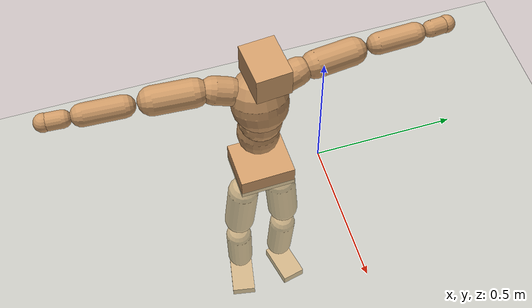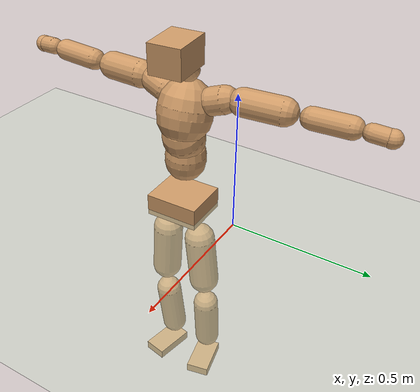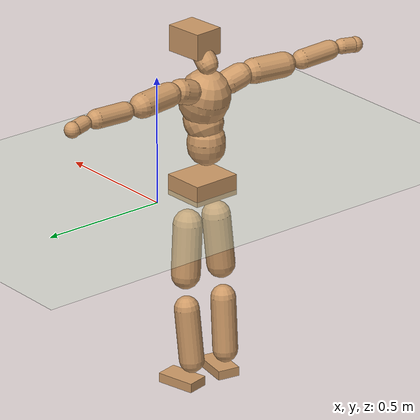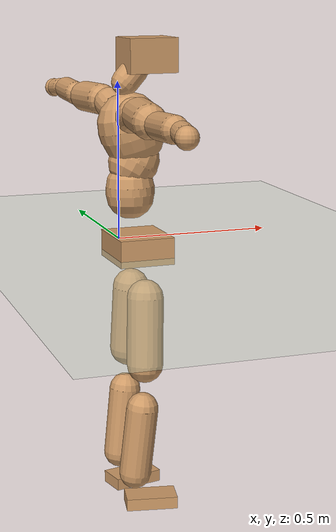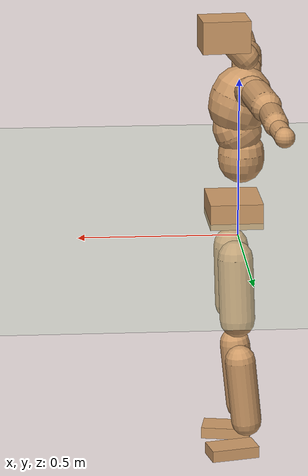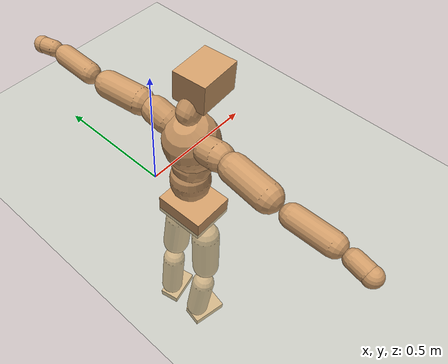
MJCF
<mujoco model="humanoid">
  <compiler coordinate="local" angle="radian"/>
  <default>
    <joint damping="0.0" armature="0.01" stiffness="0.0" limited="true"/>
    <geom conaffinity="1" condim="3" contype="7" margin="0.001" rgba="0.8 0.6 .4 1"/>
  </default>
  <asset>
    <texture type="skybox" builtin="gradient" rgb1=".4 .5 .6" rgb2="0 0 0" width="100" height="100"/>
    <texture builtin="flat" height="1278" mark="cross" markrgb="1 1 1" name="texgeom" random="0.01" rgb1="0.8 0.6 0.4" rgb2="0.8 0.6 0.4" type="cube" width="127"/>
    <texture builtin="checker" height="100" name="texplane" rgb1="0 0 0" rgb2="0.8 0.8 0.8" type="2d" width="100"/>
    <material name="MatPlane" reflectance="0.5" shininess="1" specular="1" texrepeat="60 60" texture="texplane"/>
    <material name="geom" texture="texgeom" texuniform="true"/>
  </asset>
  <worldbody>
    <light cutoff="100" diffuse="1 1 1" dir="-0 0 -1.3" directional="true" exponent="1" pos="0 0 1.3" specular=".1 .1 .1"/>
    <geom conaffinity="1" condim="3" name="floor" pos="0 0 0" rgba="0.8 0.9 0.8 1" size="100 100 .2" type="plane" material="MatPlane"/>
    <body name="Pelvis" pos="-0.0005 -0.2118 0.0316">
      <freejoint name="Pelvis"/>
      <geom type="box" contype="1" conaffinity="1" density="500" pos="-0.0047 -0.0001 -0.0124" size="0.0844 0.0972 0.0409" quat="0.9999 0.0000 0.0000 0.0108" name="Pelvis"/>
      <body name="L_Hip" pos="-0.0023 0.0653 -0.0876">
        <joint name="L_Hip_x" type="hinge" pos="0 0 0" axis="1 0 0" stiffness="800" damping="80" armature="0.02" range="-180.0000 180.0000"/>
        <joint name="L_Hip_y" type="hinge" pos="0 0 0" axis="0 1 0" stiffness="800" damping="80" armature="0.02" range="-180.0000 180.0000"/>
        <joint name="L_Hip_z" type="hinge" pos="0 0 0" axis="0 0 1" stiffness="800" damping="80" armature="0.02" range="-180.0000 180.0000"/>
        <geom type="capsule" contype="1" conaffinity="1" density="500" fromto="-0.0023 0.0053 -0.0674 -0.0091 0.0211 -0.2697" size="0.0564" name="L_Hip"/>
        <body name="L_Knee" pos="-0.0114 0.0263 -0.3371">
          <joint name="L_Knee_x" type="hinge" pos="0 0 0" axis="1 0 0" stiffness="800" damping="80" armature="0.02" range="-180.0000 180.0000"/>
          <joint name="L_Knee_y" type="hinge" pos="0 0 0" axis="0 1 0" stiffness="800" damping="80" armature="0.02" range="-180.0000 180.0000"/>
          <joint name="L_Knee_z" type="hinge" pos="0 0 0" axis="0 0 1" stiffness="800" damping="80" armature="0.02" range="-180.0000 180.0000"/>
          <geom type="capsule" contype="1" conaffinity="1" density="500" fromto="-0.0075 -0.0019 -0.0704 -0.0299 -0.0077 -0.2815" size="0.0489" name="L_Knee"/>
          <body name="L_Ankle" pos="-0.0373 -0.0097 -0.3519">
            <joint name="L_Ankle_x" type="hinge" pos="0 0 0" axis="1 0 0" stiffness="800" damping="80" armature="0.02" range="-180.0000 180.0000"/>
            <joint name="L_Ankle_y" type="hinge" pos="0 0 0" axis="0 1 0" stiffness="800" damping="80" armature="0.02" range="-180.0000 180.0000"/>
            <joint name="L_Ankle_z" type="hinge" pos="0 0 0" axis="0 0 1" stiffness="800" damping="80" armature="0.02" range="-180.0000 180.0000"/>
            <geom type="box" contype="1" conaffinity="1" density="500" pos="0.0539 0.0119 -0.0256" size="0.0783 0.0442 0.0187" quat="0.9941 0.0000 0.0000 0.1081" name="L_Ankle"/>
            <body name="L_Toe" pos="0.1079 0.0238 -0.0513">
              <joint name="L_Toe_x" type="hinge" pos="0 0 0" axis="1 0 0" stiffness="500" damping="50" armature="0.02" range="-180.0000 180.0000"/>
              <joint name="L_Toe_y" type="hinge" pos="0 0 0" axis="0 1 0" stiffness="500" damping="50" armature="0.02" range="-180.0000 180.0000"/>
              <joint name="L_Toe_z" type="hinge" pos="0 0 0" axis="0 0 1" stiffness="500" damping="50" armature="0.02" range="-180.0000 180.0000"/>
              <geom type="box" contype="1" conaffinity="1" density="500" pos="0.0000 0.0000 0.0257" size="0.0009 0.0022 0.0009" quat="0.9934 0.0000 0.0000 0.1148" name="L_Toe"/>
            </body>
          </body>
        </body>
      </body>
      <body name="R_Hip" pos="-0.0001 -0.0631 -0.0877">
        <joint name="R_Hip_x" type="hinge" pos="0 0 0" axis="1 0 0" stiffness="800" damping="80" armature="0.02" range="-180.0000 180.0000"/>
        <joint name="R_Hip_y" type="hinge" pos="0 0 0" axis="0 1 0" stiffness="800" damping="80" armature="0.02" range="-180.0000 180.0000"/>
        <joint name="R_Hip_z" type="hinge" pos="0 0 0" axis="0 0 1" stiffness="800" damping="80" armature="0.02" range="-180.0000 180.0000"/>
        <geom type="capsule" contype="1" conaffinity="1" density="500" fromto="-0.0026 -0.0060 -0.0685 -0.0103 -0.0238 -0.2741" size="0.0558" name="R_Hip"/>
        <body name="R_Knee" pos="-0.0129 -0.0298 -0.3426">
          <joint name="R_Knee_x" type="hinge" pos="0 0 0" axis="1 0 0" stiffness="800" damping="80" armature="0.02" range="-180.0000 180.0000"/>
          <joint name="R_Knee_y" type="hinge" pos="0 0 0" axis="0 1 0" stiffness="800" damping="80" armature="0.02" range="-180.0000 180.0000"/>
          <joint name="R_Knee_z" type="hinge" pos="0 0 0" axis="0 0 1" stiffness="800" damping="80" armature="0.02" range="-180.0000 180.0000"/>
          <geom type="capsule" contype="1" conaffinity="1" density="500" fromto="-0.0074 0.0025 -0.0706 -0.0297 0.0099 -0.2826" size="0.0491" name="R_Knee"/>
          <body name="R_Ankle" pos="-0.0372 0.0123 -0.3532">
            <joint name="R_Ankle_x" type="hinge" pos="0 0 0" axis="1 0 0" stiffness="800" damping="80" armature="0.02" range="-180.0000 180.0000"/>
            <joint name="R_Ankle_y" type="hinge" pos="0 0 0" axis="0 1 0" stiffness="800" damping="80" armature="0.02" range="-180.0000 180.0000"/>
            <joint name="R_Ankle_z" type="hinge" pos="0 0 0" axis="0 0 1" stiffness="800" damping="80" armature="0.02" range="-180.0000 180.0000"/>
            <geom type="box" contype="1" conaffinity="1" density="500" pos="0.0554 -0.0105 -0.0206" size="0.0789 0.0444 0.0185" quat="0.9956 0.0000 0.0000 -0.0933" name="R_Ankle"/>
            <body name="R_Toe" pos="0.1108 -0.0209 -0.0411">
              <joint name="R_Toe_x" type="hinge" pos="0 0 0" axis="1 0 0" stiffness="500" damping="50" armature="0.02" range="-180.0000 180.0000"/>
              <joint name="R_Toe_y" type="hinge" pos="0 0 0" axis="0 1 0" stiffness="500" damping="50" armature="0.02" range="-180.0000 180.0000"/>
              <joint name="R_Toe_z" type="hinge" pos="0 0 0" axis="0 0 1" stiffness="500" damping="50" armature="0.02" range="-180.0000 180.0000"/>
              <geom type="box" contype="1" conaffinity="1" density="500" pos="0.0000 0.0000 0.0227" size="0.0008 0.0022 0.001" quat="0.9965 0.0000 0.0000 -0.0831" name="R_Toe"/>
            </body>
          </body>
        </body>
      </body>
      <body name="Torso" pos="-0.0259 -0.0028 0.1011">
        <joint name="Torso_x" type="hinge" pos="0 0 0" axis="1 0 0" stiffness="1000" damping="100" armature="0.02" range="-180.0000 180.0000"/>
        <joint name="Torso_y" type="hinge" pos="0 0 0" axis="0 1 0" stiffness="1000" damping="100" armature="0.02" range="-180.0000 180.0000"/>
        <joint name="Torso_z" type="hinge" pos="0 0 0" axis="0 0 1" stiffness="1000" damping="100" armature="0.02" range="-180.0000 180.0000"/>
        <geom type="capsule" contype="1" conaffinity="1" density="500" fromto="-0.0014 0.0021 0.0743 -0.0010 0.0014 0.0496" size="0.0736" name="Torso"/>
        <body name="Spine" pos="-0.0024 0.0035 0.1239">
          <joint name="Spine_x" type="hinge" pos="0 0 0" axis="1 0 0" stiffness="1000" damping="100" armature="0.02" range="-180.0000 180.0000"/>
          <joint name="Spine_y" type="hinge" pos="0 0 0" axis="0 1 0" stiffness="1000" damping="100" armature="0.02" range="-180.0000 180.0000"/>
          <joint name="Spine_z" type="hinge" pos="0 0 0" axis="0 0 1" stiffness="1000" damping="100" armature="0.02" range="-180.0000 180.0000"/>
          <geom type="capsule" contype="1" conaffinity="1" density="500" fromto="0.0177 0.0016 0.0297 0.0118 0.0010 0.0198" size="0.0755" name="Spine"/>
          <body name="Chest" pos="0.0295 0.0026 0.0496">
            <joint name="Chest_x" type="hinge" pos="0 0 0" axis="1 0 0" stiffness="1000" damping="100" armature="0.02" range="-180.0000 180.0000"/>
            <joint name="Chest_y" type="hinge" pos="0 0 0" axis="0 1 0" stiffness="1000" damping="100" armature="0.02" range="-180.0000 180.0000"/>
            <joint name="Chest_z" type="hinge" pos="0 0 0" axis="0 0 1" stiffness="1000" damping="100" armature="0.02" range="-180.0000 180.0000"/>
            <geom type="capsule" contype="1" conaffinity="1" density="500" fromto="-0.0279 -0.0004 0.0854 -0.0186 -0.0003 0.0569" size="0.097" name="Chest"/>
            <body name="Neck" pos="-0.0509 -0.0001 0.1987">
              <joint name="Neck_x" type="hinge" pos="0 0 0" axis="1 0 0" stiffness="500" damping="50" armature="0.02" range="-180.0000 180.0000"/>
              <joint name="Neck_y" type="hinge" pos="0 0 0" axis="0 1 0" stiffness="500" damping="50" armature="0.02" range="-180.0000 180.0000"/>
              <joint name="Neck_z" type="hinge" pos="0 0 0" axis="0 0 1" stiffness="500" damping="50" armature="0.02" range="-180.0000 180.0000"/>
              <geom type="capsule" contype="1" conaffinity="1" density="500" fromto="0.0105 0.0005 0.0118 0.0422 0.0019 0.0472" size="0.0409" name="Neck"/>
              <body name="Head" pos="0.0527 0.0024 0.059">
                <joint name="Head_x" type="hinge" pos="0 0 0" axis="1 0 0" stiffness="500" damping="50" armature="0.02" range="-180.0000 180.0000"/>
                <joint name="Head_y" type="hinge" pos="0 0 0" axis="0 1 0" stiffness="500" damping="50" armature="0.02" range="-180.0000 180.0000"/>
                <joint name="Head_z" type="hinge" pos="0 0 0" axis="0 0 1" stiffness="500" damping="50" armature="0.02" range="-180.0000 180.0000"/>
                <geom type="box" contype="1" conaffinity="1" density="500" pos="0.0273 0.0022 0.0305" size="0.0759 0.0587 0.0512" quat="0.9992 0.0000 0.0000 0.0398" name="Head"/>
              </body>
            </body>
            <body name="L_Thorax" pos="-0.0415 0.0732 0.1155">
              <joint name="L_Thorax_x" type="hinge" pos="0 0 0" axis="1 0 0" stiffness="500" damping="50" armature="0.02" range="-180.0000 180.0000"/>
              <joint name="L_Thorax_y" type="hinge" pos="0 0 0" axis="0 1 0" stiffness="500" damping="50" armature="0.02" range="-180.0000 180.0000"/>
              <joint name="L_Thorax_z" type="hinge" pos="0 0 0" axis="0 0 1" stiffness="500" damping="50" armature="0.02" range="-180.0000 180.0000"/>
              <geom type="capsule" contype="1" conaffinity="1" density="500" fromto="-0.0017 0.0157 0.0053 -0.0067 0.0628 0.0213" size="0.0477" name="L_Thorax"/>
              <body name="L_Shoulder" pos="-0.0084 0.0785 0.0266">
                <joint name="L_Shoulder_x" type="hinge" pos="0 0 0" axis="1 0 0" stiffness="500" damping="50" armature="0.02" range="-720.0000 720.0000"/>
                <joint name="L_Shoulder_y" type="hinge" pos="0 0 0" axis="0 1 0" stiffness="500" damping="50" armature="0.02" range="-720.0000 720.0000"/>
                <joint name="L_Shoulder_z" type="hinge" pos="0 0 0" axis="0 0 1" stiffness="500" damping="50" armature="0.02" range="-720.0000 720.0000"/>
                <geom type="capsule" contype="1" conaffinity="1" density="500" fromto="-0.0055 0.0454 -0.0009 -0.0220 0.1816 -0.0035" size="0.0476" name="L_Shoulder"/>
                <body name="L_Elbow" pos="-0.0274 0.227 -0.0044">
                  <joint name="L_Elbow_x" type="hinge" pos="0 0 0" axis="1 0 0" stiffness="500" damping="50" armature="0.02" range="-720.0000 720.0000"/>
                  <joint name="L_Elbow_y" type="hinge" pos="0 0 0" axis="0 1 0" stiffness="500" damping="50" armature="0.02" range="-720.0000 720.0000"/>
                  <joint name="L_Elbow_z" type="hinge" pos="0 0 0" axis="0 0 1" stiffness="500" damping="50" armature="0.02" range="-720.0000 720.0000"/>
                  <geom type="capsule" contype="1" conaffinity="1" density="500" fromto="-0.0002 0.0429 0.0016 -0.0010 0.1715 0.0063" size="0.0373" name="L_Elbow"/>
                  <body name="L_Wrist" pos="-0.0012 0.2144 0.0079">
                    <joint name="L_Wrist_x" type="hinge" pos="0 0 0" axis="1 0 0" stiffness="300" damping="30" armature="0.02" range="-180.0000 180.0000"/>
                    <joint name="L_Wrist_y" type="hinge" pos="0 0 0" axis="0 1 0" stiffness="300" damping="30" armature="0.02" range="-180.0000 180.0000"/>
                    <joint name="L_Wrist_z" type="hinge" pos="0 0 0" axis="0 0 1" stiffness="300" damping="30" armature="0.02" range="-180.0000 180.0000"/>
                    <geom type="capsule" contype="1" conaffinity="1" density="500" fromto="-0.0025 0.0150 -0.0017 -0.0101 0.0601 -0.0070" size="0.0288" name="L_Wrist"/>
                    <body name="L_Hand" pos="-0.0126 0.0752 -0.0087">
                      <joint name="L_Hand_x" type="hinge" pos="0 0 0" axis="1 0 0" stiffness="300" damping="30" armature="0.02" range="-180.0000 180.0000"/>
                      <joint name="L_Hand_y" type="hinge" pos="0 0 0" axis="0 1 0" stiffness="300" damping="30" armature="0.02" range="-180.0000 180.0000"/>
                      <joint name="L_Hand_z" type="hinge" pos="0 0 0" axis="0 0 1" stiffness="300" damping="30" armature="0.02" range="-180.0000 180.0000"/>
                      <geom type="sphere" contype="1" conaffinity="1" density="500" size="0.0306" pos="0.0000 0.0000 0.0000" name="L_Hand"/>
                    </body>
                  </body>
                </body>
              </body>
            </body>
            <body name="R_Thorax" pos="-0.0469 -0.0751 0.1129">
              <joint name="R_Thorax_x" type="hinge" pos="0 0 0" axis="1 0 0" stiffness="500" damping="50" armature="0.02" range="-180.0000 180.0000"/>
              <joint name="R_Thorax_y" type="hinge" pos="0 0 0" axis="0 1 0" stiffness="500" damping="50" armature="0.02" range="-180.0000 180.0000"/>
              <joint name="R_Thorax_z" type="hinge" pos="0 0 0" axis="0 0 1" stiffness="500" damping="50" armature="0.02" range="-180.0000 180.0000"/>
              <geom type="capsule" contype="1" conaffinity="1" density="500" fromto="-0.0024 -0.0168 0.0053 -0.0095 -0.0672 0.0214" size="0.0477" name="R_Thorax"/>
              <body name="R_Shoulder" pos="-0.0119 -0.084 0.0267">
                <joint name="R_Shoulder_x" type="hinge" pos="0 0 0" axis="1 0 0" stiffness="500" damping="50" armature="0.02" range="-720.0000 720.0000"/>
                <joint name="R_Shoulder_y" type="hinge" pos="0 0 0" axis="0 1 0" stiffness="500" damping="50" armature="0.02" range="-720.0000 720.0000"/>
                <joint name="R_Shoulder_z" type="hinge" pos="0 0 0" axis="0 0 1" stiffness="500" damping="50" armature="0.02" range="-720.0000 720.0000"/>
                <geom type="capsule" contype="1" conaffinity="1" density="500" fromto="-0.0041 -0.0445 -0.0014 -0.0163 -0.1780 -0.0056" size="0.0492" name="R_Shoulder"/>
                <body name="R_Elbow" pos="-0.0204 -0.2224 -0.007">
                  <joint name="R_Elbow_x" type="hinge" pos="0 0 0" axis="1 0 0" stiffness="500" damping="50" armature="0.02" range="-720.0000 720.0000"/>
                  <joint name="R_Elbow_y" type="hinge" pos="0 0 0" axis="0 1 0" stiffness="500" damping="50" armature="0.02" range="-720.0000 720.0000"/>
                  <joint name="R_Elbow_z" type="hinge" pos="0 0 0" axis="0 0 1" stiffness="500" damping="50" armature="0.02" range="-720.0000 720.0000"/>
                  <geom type="capsule" contype="1" conaffinity="1" density="500" fromto="-0.0007 -0.0448 0.0019 -0.0027 -0.1793 0.0078" size="0.038" name="R_Elbow"/>
                  <body name="R_Wrist" pos="-0.0034 -0.2242 0.0097">
                    <joint name="R_Wrist_x" type="hinge" pos="0 0 0" axis="1 0 0" stiffness="300" damping="30" armature="0.02" range="-180.0000 180.0000"/>
                    <joint name="R_Wrist_y" type="hinge" pos="0 0 0" axis="0 1 0" stiffness="300" damping="30" armature="0.02" range="-180.0000 180.0000"/>
                    <joint name="R_Wrist_z" type="hinge" pos="0 0 0" axis="0 0 1" stiffness="300" damping="30" armature="0.02" range="-180.0000 180.0000"/>
                    <geom type="capsule" contype="1" conaffinity="1" density="500" fromto="-0.0020 -0.0153 -0.0013 -0.0078 -0.0611 -0.0053" size="0.0299" name="R_Wrist"/>
                    <body name="R_Hand" pos="-0.0098 -0.0763 -0.0066">
                      <joint name="R_Hand_x" type="hinge" pos="0 0 0" axis="1 0 0" stiffness="300" damping="30" armature="0.02" range="-180.0000 180.0000"/>
                      <joint name="R_Hand_y" type="hinge" pos="0 0 0" axis="0 1 0" stiffness="300" damping="30" armature="0.02" range="-180.0000 180.0000"/>
                      <joint name="R_Hand_z" type="hinge" pos="0 0 0" axis="0 0 1" stiffness="300" damping="30" armature="0.02" range="-180.0000 180.0000"/>
                      <geom type="sphere" contype="1" conaffinity="1" density="500" size="0.0310" pos="0.0000 0.0000 0.0000" name="R_Hand"/>
                    </body>
                  </body>
                </body>
              </body>
            </body>
          </body>
        </body>
      </body>
    </body>
  </worldbody>
  <actuator>
    <motor name="L_Hip_x" joint="L_Hip_x" gear="500"/>
    <motor name="L_Hip_y" joint="L_Hip_y" gear="500"/>
    <motor name="L_Hip_z" joint="L_Hip_z" gear="500"/>
    <motor name="L_Knee_x" joint="L_Knee_x" gear="500"/>
    <motor name="L_Knee_y" joint="L_Knee_y" gear="500"/>
    <motor name="L_Knee_z" joint="L_Knee_z" gear="500"/>
    <motor name="L_Ankle_x" joint="L_Ankle_x" gear="500"/>
    <motor name="L_Ankle_y" joint="L_Ankle_y" gear="500"/>
    <motor name="L_Ankle_z" joint="L_Ankle_z" gear="500"/>
    <motor name="L_Toe_x" joint="L_Toe_x" gear="500"/>
    <motor name="L_Toe_y" joint="L_Toe_y" gear="500"/>
    <motor name="L_Toe_z" joint="L_Toe_z" gear="500"/>
    <motor name="R_Hip_x" joint="R_Hip_x" gear="500"/>
    <motor name="R_Hip_y" joint="R_Hip_y" gear="500"/>
    <motor name="R_Hip_z" joint="R_Hip_z" gear="500"/>
    <motor name="R_Knee_x" joint="R_Knee_x" gear="500"/>
    <motor name="R_Knee_y" joint="R_Knee_y" gear="500"/>
    <motor name="R_Knee_z" joint="R_Knee_z" gear="500"/>
    <motor name="R_Ankle_x" joint="R_Ankle_x" gear="500"/>
    <motor name="R_Ankle_y" joint="R_Ankle_y" gear="500"/>
    <motor name="R_Ankle_z" joint="R_Ankle_z" gear="500"/>
    <motor name="R_Toe_x" joint="R_Toe_x" gear="500"/>
    <motor name="R_Toe_y" joint="R_Toe_y" gear="500"/>
    <motor name="R_Toe_z" joint="R_Toe_z" gear="500"/>
    <motor name="Torso_x" joint="Torso_x" gear="500"/>
    <motor name="Torso_y" joint="Torso_y" gear="500"/>
    <motor name="Torso_z" joint="Torso_z" gear="500"/>
    <motor name="Spine_x" joint="Spine_x" gear="500"/>
    <motor name="Spine_y" joint="Spine_y" gear="500"/>
    <motor name="Spine_z" joint="Spine_z" gear="500"/>
    <motor name="Chest_x" joint="Chest_x" gear="500"/>
    <motor name="Chest_y" joint="Chest_y" gear="500"/>
    <motor name="Chest_z" joint="Chest_z" gear="500"/>
    <motor name="Neck_x" joint="Neck_x" gear="500"/>
    <motor name="Neck_y" joint="Neck_y" gear="500"/>
    <motor name="Neck_z" joint="Neck_z" gear="500"/>
    <motor name="Head_x" joint="Head_x" gear="500"/>
    <motor name="Head_y" joint="Head_y" gear="500"/>
    <motor name="Head_z" joint="Head_z" gear="500"/>
    <motor name="L_Thorax_x" joint="L_Thorax_x" gear="500"/>
    <motor name="L_Thorax_y" joint="L_Thorax_y" gear="500"/>
    <motor name="L_Thorax_z" joint="L_Thorax_z" gear="500"/>
    <motor name="L_Shoulder_x" joint="L_Shoulder_x" gear="500"/>
    <motor name="L_Shoulder_y" joint="L_Shoulder_y" gear="500"/>
    <motor name="L_Shoulder_z" joint="L_Shoulder_z" gear="500"/>
    <motor name="L_Elbow_x" joint="L_Elbow_x" gear="500"/>
    <motor name="L_Elbow_y" joint="L_Elbow_y" gear="500"/>
    <motor name="L_Elbow_z" joint="L_Elbow_z" gear="500"/>
    <motor name="L_Wrist_x" joint="L_Wrist_x" gear="500"/>
    <motor name="L_Wrist_y" joint="L_Wrist_y" gear="500"/>
    <motor name="L_Wrist_z" joint="L_Wrist_z" gear="500"/>
    <motor name="L_Hand_x" joint="L_Hand_x" gear="500"/>
    <motor name="L_Hand_y" joint="L_Hand_y" gear="500"/>
    <motor name="L_Hand_z" joint="L_Hand_z" gear="500"/>
    <motor name="R_Thorax_x" joint="R_Thorax_x" gear="500"/>
    <motor name="R_Thorax_y" joint="R_Thorax_y" gear="500"/>
    <motor name="R_Thorax_z" joint="R_Thorax_z" gear="500"/>
    <motor name="R_Shoulder_x" joint="R_Shoulder_x" gear="500"/>
    <motor name="R_Shoulder_y" joint="R_Shoulder_y" gear="500"/>
    <motor name="R_Shoulder_z" joint="R_Shoulder_z" gear="500"/>
    <motor name="R_Elbow_x" joint="R_Elbow_x" gear="500"/>
    <motor name="R_Elbow_y" joint="R_Elbow_y" gear="500"/>
    <motor name="R_Elbow_z" joint="R_Elbow_z" gear="500"/>
    <motor name="R_Wrist_x" joint="R_Wrist_x" gear="500"/>
    <motor name="R_Wrist_y" joint="R_Wrist_y" gear="500"/>
    <motor name="R_Wrist_z" joint="R_Wrist_z" gear="500"/>
    <motor name="R_Hand_x" joint="R_Hand_x" gear="500"/>
    <motor name="R_Hand_y" joint="R_Hand_y" gear="500"/>
    <motor name="R_Hand_z" joint="R_Hand_z" gear="500"/>
  </actuator>
  <contact>
    <exclude body1="Torso" body2="Chest"/>
    <exclude body1="Head" body2="Chest"/>
    <exclude body1="R_Knee" body2="R_Toe"/>
    <exclude body1="R_Knee" body2="L_Ankle"/>
    <exclude body1="R_Knee" body2="L_Toe"/>
    <exclude body1="L_Knee" body2="L_Toe"/>
    <exclude body1="L_Knee" body2="R_Ankle"/>
    <exclude body1="L_Knee" body2="R_Toe"/>
    <exclude body1="L_Shoulder" body2="Chest"/>
    <exclude body1="R_Shoulder" body2="Chest"/>
  </contact>
  <sensor/>
  <size njmax="700" nconmax="700"/>
</mujoco>
